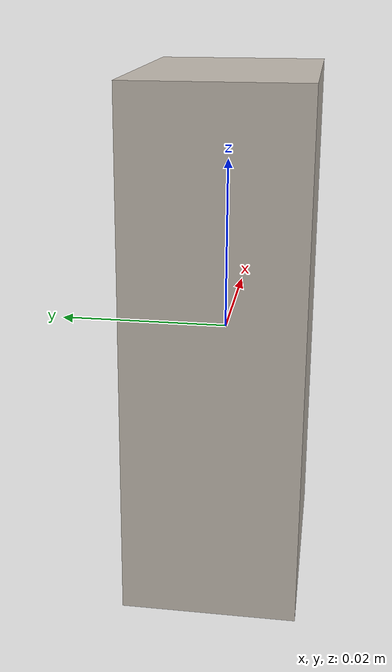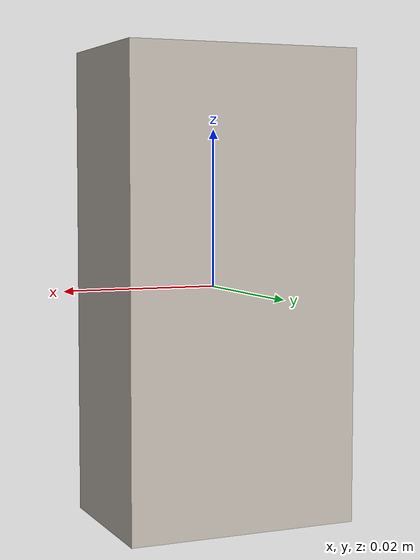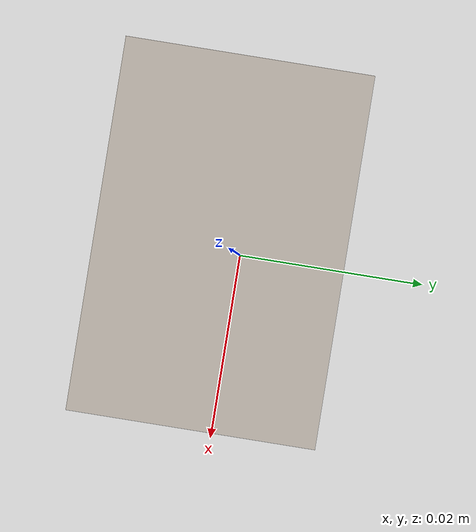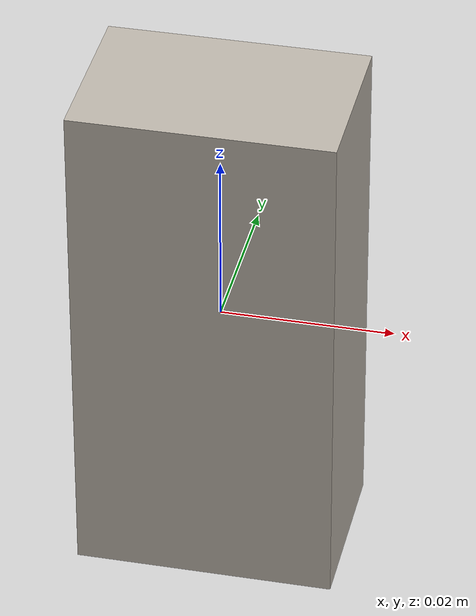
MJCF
<mujoco model="tictac">
  <asset>
    <texture file="textures/smallboxes/tictac.png" type="2d" name="tex-tictac" />
    <material name="tictac" reflectance="0.7" texrepeat="15 15" texture="tex-tictac" texuniform="true"/>
  </asset>
  <worldbody>
    <body>
      <body name="collision">
        <geom pos="0 0 0" size="0.015 0.01 0.03" type="box" solimp="0.998 0.998 0.001" solref="0.001 1" density="250" friction="0.95 0.3 0.1"  material="tictac" group="1" condim="4"/>
      </body>

      <site rgba="0 0 0 0" size="0.005" pos="0 0 -0.045" name="bottom_site"/>
      <site rgba="0 0 0 0" size="0.005" pos="0 0 0.03" name="top_site"/>
      <site rgba="0 0 0 0" size="0.005" pos="0.06 0.06 0" name="horizontal_radius_site"/>
    </body>
  </worldbody>
</mujoco>
